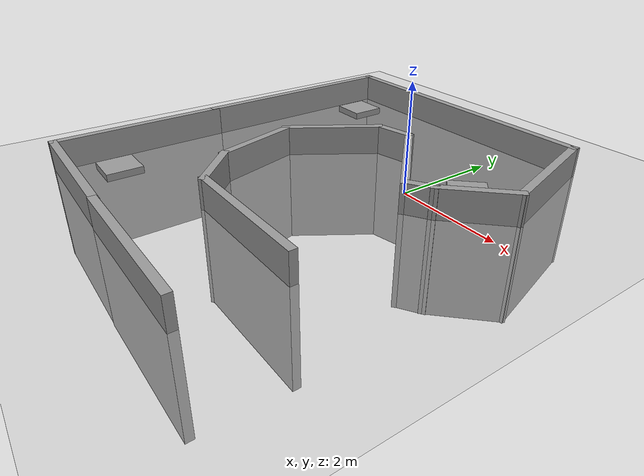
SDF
<sdf version="1.7">
 <world name="default">
  <light name="sun" type="directional">
   <pose>0 0 10 0 -0 0</pose>
   <diffuse>0.8 0.8 0.8 1</diffuse>
   <specular>0.2 0.2 0.2 1</specular>
   <attenuation>
    <range>1000</range>
    <constant>0.9</constant>
    <linear>0.01</linear>
    <quadratic>0.001</quadratic>
   </attenuation>
   <direction>-0.5 0.1 -0.9</direction>
   <spot><inner_angle>0</inner_angle><outer_angle>0</outer_angle><falloff>0</falloff></spot>
  </light>
  <model name="ground_plane">
   <static>1</static>
   <link name="link">
    <collision name="collision">
     <geometry><plane><normal>0 0 1</normal><size>100 100</size></plane></geometry>
     <surface><friction><ode><mu>100</mu><mu2>50</mu2></ode></friction></surface>
    </collision>
    <visual name="visual">
     <cast_shadows>0</cast_shadows>
     <geometry><plane><normal>0 0 1</normal><size>100 100</size></plane></geometry>
     <material>
      <script><uri>file://media/materials/scripts/gazebo.material</uri><name>Gazebo/Grey</name></script>
     </material>
    </visual>
   </link>
  </model>
  <gravity>0 0 -9.8</gravity>
  <magnetic_field>6e-06 2.3e-05 -4.2e-05</magnetic_field>
  <atmosphere type="adiabatic"/>
  <physics type="ode">
   <max_step_size>0.001</max_step_size>
   <real_time_factor>1</real_time_factor>
   <real_time_update_rate>1000</real_time_update_rate>
  </physics>
  <scene><ambient>0.4 0.4 0.4 1</ambient><background>0.7 0.7 0.7 1</background><shadows>1</shadows></scene>
  <audio><device>default</device></audio>
  <spherical_coordinates>
   <surface_model>EARTH_WGS84</surface_model>
   <latitude_deg>0</latitude_deg>
   <longitude_deg>0</longitude_deg>
   <elevation>0</elevation>
   <heading_deg>0</heading_deg>
  </spherical_coordinates>
  <model name="trail">
   <pose>-1.72645 -0.818711 -1.939 0 -0 0.798815</pose>
   <link name="Wall_0">
    <collision name="Wall_0_Collision">
     <geometry><box><size>3 0.15 2.5</size></box></geometry>
     <pose>0 0 1.25 0 -0 0</pose>
    </collision>
    <visual name="Wall_0_Visual">
     <pose>0 0 1.25 0 -0 0</pose>
     <geometry><box><size>3 0.15 2.5</size></box></geometry>
     <material>
      <script><uri>file://media/materials/scripts/gazebo.material</uri><name>Gazebo/Grey</name></script>
      <ambient>1 1 1 1</ambient>
     </material>
     <meta><layer>0</layer></meta>
    </visual>
    <pose>-1.87842 -3.71434 0 0 -0 2.35619</pose>
   </link>
   <link name="Wall_1">
    <collision name="Wall_1_Collision">
     <geometry><box><size>2.90937 0.15 2.5</size></box></geometry>
     <pose>0 0 1.25 0 -0 0</pose>
    </collision>
    <visual name="Wall_1_Visual">
     <pose>0 0 1.25 0 -0 0</pose>
     <geometry><box><size>2.90937 0.15 2.5</size></box></geometry>
     <material>
      <script><uri>file://media/materials/scripts/gazebo.material</uri><name>Gazebo/Grey</name></script>
      <ambient>1 1 1 1</ambient>
     </material>
     <meta><layer>0</layer></meta>
    </visual>
    <pose>-3.83174 -1.71473 0 0 -0 2.33925</pose>
   </link>
   <link name="Wall_10">
    <collision name="Wall_10_Collision">
     <geometry><box><size>2.02142 0.15 2.5</size></box></geometry>
     <pose>0 0 1.25 0 -0 0</pose>
    </collision>
    <visual name="Wall_10_Visual">
     <pose>0 0 1.25 0 -0 0</pose>
     <geometry><box><size>2.02142 0.15 2.5</size></box></geometry>
     <material>
      <script><uri>file://media/materials/scripts/gazebo.material</uri><name>Gazebo/Grey</name></script>
      <ambient>1 1 1 1</ambient>
     </material>
     <meta><layer>0</layer></meta>
    </visual>
    <pose>0.264352 0.957489 0 0 -0 -2.94126</pose>
   </link>
   <link name="Wall_11">
    <collision name="Wall_11_Collision">
     <geometry><box><size>1.75858 0.15 2.5</size></box></geometry>
     <pose>0 0 1.25 0 -0 0</pose>
    </collision>
    <visual name="Wall_11_Visual">
     <pose>0 0 1.25 0 -0 0</pose>
     <geometry><box><size>1.75858 0.15 2.5</size></box></geometry>
     <material>
      <script><uri>file://media/materials/scripts/gazebo.material</uri><name>Gazebo/Grey</name></script>
      <ambient>1 1 1 1</ambient>
     </material>
     <meta><layer>0</layer></meta>
    </visual>
    <pose>-1.05741 0.023067 0 0 -0 -2.09815</pose>
   </link>
   <link name="Wall_12">
    <collision name="Wall_12_Collision">
     <geometry><box><size>1.22355 0.15 2.5</size></box></geometry>
     <pose>0 0 1.25 0 -0 0</pose>
    </collision>
    <visual name="Wall_12_Visual">
     <pose>0 0 1.25 0 -0 0</pose>
     <geometry><box><size>1.22355 0.15 2.5</size></box></geometry>
     <material>
      <script><uri>file://media/materials/scripts/gazebo.material</uri><name>Gazebo/Grey</name></script>
      <ambient>1 1 1 1</ambient>
     </material>
     <meta><layer>0</layer></meta>
    </visual>
    <pose>-1.46217 -1.20873 0 0 -0 -1.5708</pose>
   </link>
   <link name="Wall_13">
    <collision name="Wall_13_Collision">
     <geometry><box><size>2.75 0.15 2.5</size></box></geometry>
     <pose>0 0 1.25 0 -0 0</pose>
    </collision>
    <visual name="Wall_13_Visual">
     <pose>0 0 1.25 0 -0 0</pose>
     <geometry><box><size>2.75 0.15 2.5</size></box></geometry>
     <material>
      <script><uri>file://media/materials/scripts/gazebo.material</uri><name>Gazebo/Grey</name></script>
      <ambient>1 1 1 1</ambient>
     </material>
     <meta><layer>0</layer></meta>
    </visual>
    <pose>-0.54293 -2.65152 0 0 -0 -0.785398</pose>
   </link>
   <link name="Wall_2">
    <collision name="Wall_2_Collision">
     <geometry><box><size>3.5 0.15 2.5</size></box></geometry>
     <pose>0 0 1.25 0 -0 0</pose>
    </collision>
    <visual name="Wall_2_Visual">
     <pose>0 0 1.25 0 -0 0</pose>
     <geometry><box><size>3.5 0.15 2.5</size></box></geometry>
     <material>
      <script><uri>file://media/materials/scripts/gazebo.material</uri><name>Gazebo/Grey</name></script>
      <ambient>1 1 1 1</ambient>
     </material>
     <meta><layer>0</layer></meta>
    </visual>
    <pose>-3.60624 0.461646 0 0 -0 0.785398</pose>
   </link>
   <link name="Wall_3">
    <collision name="Wall_3_Collision">
     <geometry><box><size>4.5 0.15 2.5</size></box></geometry>
     <pose>0 0 1.25 0 -0 0</pose>
    </collision>
    <visual name="Wall_3_Visual">
     <pose>0 0 1.25 0 -0 0</pose>
     <geometry><box><size>4.5 0.15 2.5</size></box></geometry>
     <material>
      <script><uri>file://media/materials/scripts/gazebo.material</uri><name>Gazebo/Grey</name></script>
      <ambient>1 1 1 1</ambient>
     </material>
     <meta><layer>0</layer></meta>
    </visual>
    <pose>-0.883883 3.18401 0 0 -0 0.785398</pose>
   </link>
   <link name="Wall_4">
    <collision name="Wall_4_Collision">
     <geometry><box><size>6 0.15 2.5</size></box></geometry>
     <pose>0 0 1.25 0 -0 0</pose>
    </collision>
    <visual name="Wall_4_Visual">
     <pose>0 0 1.25 0 -0 0</pose>
     <geometry><box><size>6 0.15 2.5</size></box></geometry>
     <material>
      <script><uri>file://media/materials/scripts/gazebo.material</uri><name>Gazebo/Grey</name></script>
      <ambient>1 1 1 1</ambient>
     </material>
     <meta><layer>0</layer></meta>
    </visual>
    <pose>2.72236 2.65368 0 0 -0 -0.785398</pose>
   </link>
   <link name="Wall_5">
    <collision name="Wall_5_Collision">
     <geometry><box><size>2.5 0.15 2.5</size></box></geometry>
     <pose>0 0 1.25 0 -0 0</pose>
    </collision>
    <visual name="Wall_5_Visual">
     <pose>0 0 1.25 0 -0 0</pose>
     <geometry><box><size>2.5 0.15 2.5</size></box></geometry>
     <material>
      <script><uri>file://media/materials/scripts/gazebo.material</uri><name>Gazebo/Grey</name></script>
      <ambient>1 1 1 1</ambient>
     </material>
     <meta><layer>0</layer></meta>
    </visual>
    <pose>4.20315 -0.43219 0 0 -0 -2.0944</pose>
   </link>
   <link name="Wall_6">
    <collision name="Wall_6_Collision">
     <geometry><box><size>1.5 0.15 2.5</size></box></geometry>
     <pose>0 0 1.25 0 -0 0</pose>
    </collision>
    <visual name="Wall_6_Visual">
     <pose>0 0 1.25 0 -0 0</pose>
     <geometry><box><size>1.5 0.15 2.5</size></box></geometry>
     <material>
      <script><uri>file://media/materials/scripts/gazebo.material</uri><name>Gazebo/Grey</name></script>
      <ambient>1 1 1 1</ambient>
     </material>
     <meta><layer>0</layer></meta>
    </visual>
    <pose>2.94065 -1.44977 0 0 -0 3.14159</pose>
   </link>
   <link name="Wall_7">
    <collision name="Wall_7_Collision">
     <geometry><box><size>0.613378 0.15 2.5</size></box></geometry>
     <pose>0 0 1.25 0 -0 0</pose>
    </collision>
    <visual name="Wall_7_Visual">
     <pose>0 0 1.25 0 -0 0</pose>
     <geometry><box><size>0.613378 0.15 2.5</size></box></geometry>
     <material>
      <script><uri>file://media/materials/scripts/gazebo.material</uri><name>Gazebo/Grey</name></script>
      <ambient>1 1 1 1</ambient>
     </material>
     <meta><layer>0</layer></meta>
    </visual>
    <pose>2.04015 -1.39657 0 0 -0 2.90991</pose>
   </link>
   <link name="Wall_8">
    <collision name="Wall_8_Collision">
     <geometry><box><size>2.25 0.15 2.5</size></box></geometry>
     <pose>0 0 1.25 0 -0 0</pose>
    </collision>
    <visual name="Wall_8_Visual">
     <pose>0 0 1.25 0 -0 0</pose>
     <geometry><box><size>2.25 0.15 2.5</size></box></geometry>
     <material>
      <script><uri>file://media/materials/scripts/gazebo.material</uri><name>Gazebo/Grey</name></script>
      <ambient>1 1 1 1</ambient>
     </material>
     <meta><layer>0</layer></meta>
    </visual>
    <pose>1.78805 -0.293369 0 0 -0 1.5708</pose>
   </link>
   <link name="Wall_9">
    <collision name="Wall_9_Collision">
     <geometry><box><size>0.847374 0.15 2.5</size></box></geometry>
     <pose>0 0 1.25 0 -0 0</pose>
    </collision>
    <visual name="Wall_9_Visual">
     <pose>0 0 1.25 0 -0 0</pose>
     <geometry><box><size>0.847374 0.15 2.5</size></box></geometry>
     <material>
      <script><uri>file://media/materials/scripts/gazebo.material</uri><name>Gazebo/Grey</name></script>
      <ambient>1 1 1 1</ambient>
     </material>
     <meta><layer>0</layer></meta>
    </visual>
    <pose>1.498 0.950161 0 0 -0 2.5532</pose>
   </link>
   <static>1</static>
  </model>
  <model name="unit_box">
   <pose>-3.84665 2.01657 0.069658 0 -0 -9e-06</pose>
   <link name="link">
    <inertial>
     <mass>1</mass>
     <inertia>
      <ixx>0.166667</ixx>
      <ixy>0</ixy>
      <ixz>0</ixz>
      <iyy>0.166667</iyy>
      <iyz>0</iyz>
      <izz>0.166667</izz>
     </inertia>
    </inertial>
    <collision name="collision">
     <geometry><box><size>0.695107 0.699495 0.139316</size></box></geometry>
    </collision>
    <visual name="visual">
     <geometry><box><size>0.695107 0.699495 0.139316</size></box></geometry>
     <material>
      <script><name>Gazebo/Grey</name><uri>file://media/materials/scripts/gazebo.material</uri></script>
     </material>
    </visual>
   </link>
  </model>
  <model name="unit_box_clone">
   <pose>-3.78009 -3.81616 0.069658 0 0 -9e-06</pose>
   <link name="link">
    <inertial>
     <mass>1</mass>
     <inertia>
      <ixx>0.166667</ixx>
      <ixy>0</ixy>
      <ixz>0</ixz>
      <iyy>0.166667</iyy>
      <iyz>0</iyz>
      <izz>0.166667</izz>
     </inertia>
    </inertial>
    <collision name="collision">
     <geometry><box><size>0.695107 0.699495 0.139316</size></box></geometry>
    </collision>
    <visual name="visual">
     <geometry><box><size>0.695107 0.699495 0.139316</size></box></geometry>
     <material>
      <script><name>Gazebo/Grey</name><uri>file://media/materials/scripts/gazebo.material</uri></script>
     </material>
    </visual>
   </link>
  </model>
  <model name="unit_box_clone_0">
   <pose>0.73159 0.805403 0.069658 0 0 -0.753668</pose>
   <link name="link">
    <inertial>
     <mass>1</mass>
     <inertia>
      <ixx>0.166667</ixx>
      <ixy>0</ixy>
      <ixz>0</ixz>
      <iyy>0.166667</iyy>
      <iyz>0</iyz>
      <izz>0.166667</izz>
     </inertia>
    </inertial>
    <collision name="collision">
     <geometry><box><size>0.695107 0.699495 0.139316</size></box></geometry>
    </collision>
    <visual name="visual">
     <geometry><box><size>0.695107 0.699495 0.139316</size></box></geometry>
     <material>
      <script><name>Gazebo/Grey</name><uri>file://media/materials/scripts/gazebo.material</uri></script>
     </material>
    </visual>
   </link>
  </model>
 </world>
</sdf>
